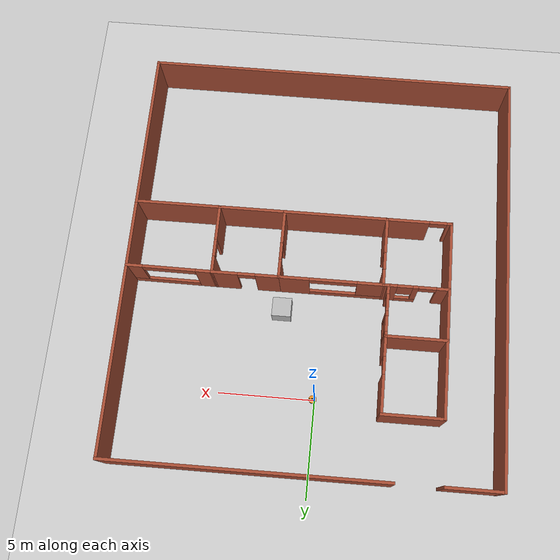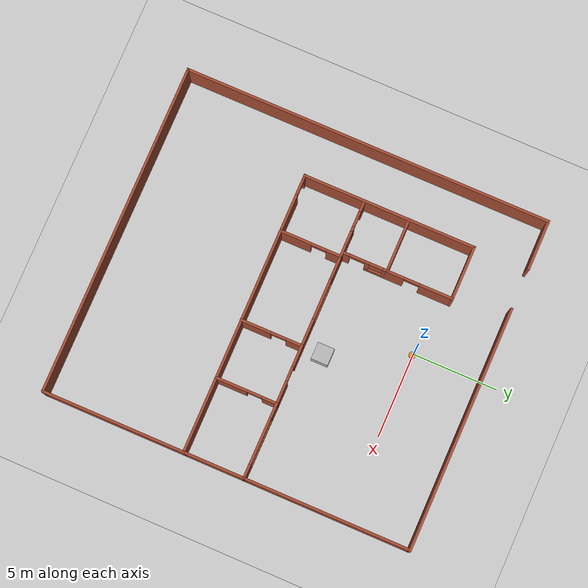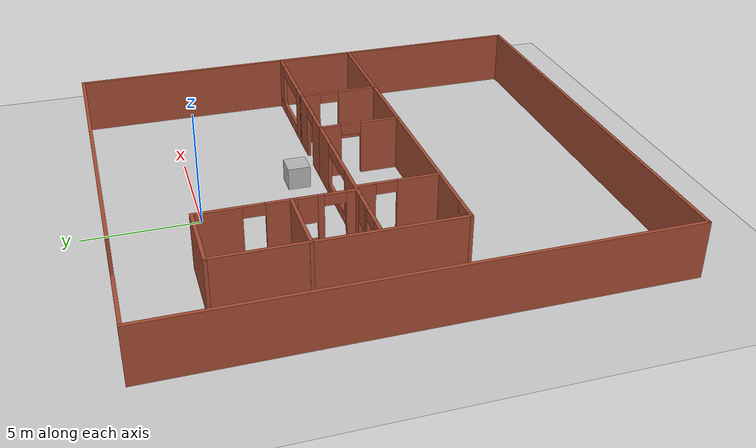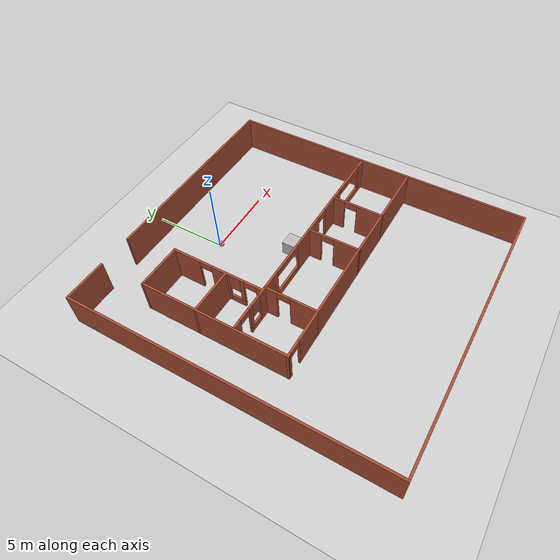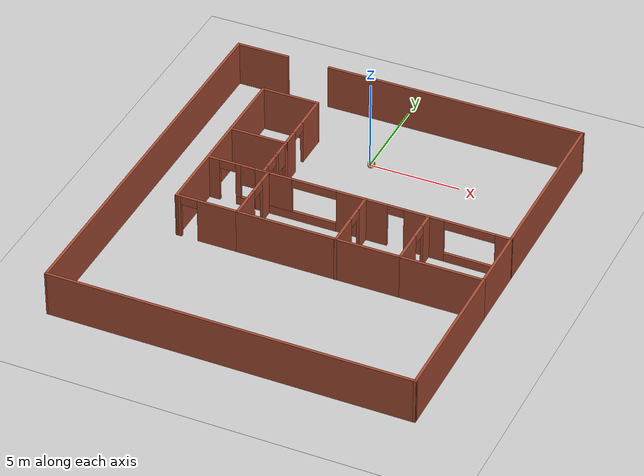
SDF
<sdf version="1.7">
 <world name="default">
  <light name="sun" type="directional">
   <pose>0 0 10 0 -0 0</pose>
   <diffuse>0.8 0.8 0.8 1</diffuse>
   <specular>0.2 0.2 0.2 1</specular>
   <attenuation>
    <range>1000</range>
    <constant>0.9</constant>
    <linear>0.01</linear>
    <quadratic>0.001</quadratic>
   </attenuation>
   <direction>-0.5 0.1 -0.9</direction>
   <spot><inner_angle>0</inner_angle><outer_angle>0</outer_angle><falloff>0</falloff></spot>
  </light>
  <model name="ground_plane">
   <static>1</static>
   <link name="link">
    <collision name="collision">
     <geometry><plane><normal>0 0 1</normal><size>100 100</size></plane></geometry>
     <surface><friction><ode><mu>100</mu><mu2>50</mu2></ode></friction></surface>
    </collision>
    <visual name="visual">
     <cast_shadows>0</cast_shadows>
     <geometry><plane><normal>0 0 1</normal><size>100 100</size></plane></geometry>
     <material>
      <script><uri>file://media/materials/scripts/gazebo.material</uri><name>Gazebo/Grey</name></script>
     </material>
    </visual>
   </link>
  </model>
  <gravity>0 0 -9.8</gravity>
  <magnetic_field>6e-06 2.3e-05 -4.2e-05</magnetic_field>
  <atmosphere type="adiabatic"/>
  <physics type="ode">
   <max_step_size>0.001</max_step_size>
   <real_time_factor>1</real_time_factor>
   <real_time_update_rate>1000</real_time_update_rate>
  </physics>
  <scene><ambient>0.4 0.4 0.4 1</ambient><background>0.7 0.7 0.7 1</background><shadows>1</shadows></scene>
  <spherical_coordinates>
   <surface_model>EARTH_WGS84</surface_model>
   <latitude_deg>0</latitude_deg>
   <longitude_deg>0</longitude_deg>
   <elevation>0</elevation>
   <heading_deg>0</heading_deg>
  </spherical_coordinates>
  <model name="home">
   <pose>0.38026 -6.8838 0 0 -0 0</pose>
   <link name="Wall_102">
    <collision name="Wall_102_Collision">
     <geometry><box><size>4.5503 0.15 2.5</size></box></geometry>
     <pose>0 0 1.25 0 -0 0</pose>
    </collision>
    <visual name="Wall_102_Visual">
     <pose>0 0 1.25 0 -0 0</pose>
     <geometry><box><size>4.5503 0.15 2.5</size></box></geometry>
     <material>
      <script><uri>file://media/materials/scripts/gazebo.material</uri><name>Gazebo/Bricks</name></script>
      <ambient>1 1 1 1</ambient>
     </material>
     <meta><layer>0</layer></meta>
    </visual>
    <pose>7.542 -2.47535 0 0 -0 3.14159</pose>
   </link>
   <link name="Wall_105">
    <pose>0.073453 10.8099 0 0 -0 0</pose>
    <visual name="Wall_105_Visual_0">
     <pose>-8.32911 0 1.25 0 -0 0</pose>
     <geometry><box><size>2.84179 0.15 2.5</size></box></geometry>
     <material>
      <script><uri>file://media/materials/scripts/gazebo.material</uri><name>Gazebo/Bricks</name></script>
      <ambient>1 1 1 1</ambient>
     </material>
     <meta><layer>0</layer></meta>
    </visual>
    <collision name="Wall_105_Collision_0">
     <geometry><box><size>2.84179 0.15 2.5</size></box></geometry>
     <pose>-8.32911 0 1.25 0 -0 0</pose>
    </collision>
    <visual name="Wall_105_Visual_1">
     <pose>2.57089 0 1.25 0 -0 0</pose>
     <geometry><box><size>14.3582 0.15 2.5</size></box></geometry>
     <material>
      <script><uri>file://media/materials/scripts/gazebo.material</uri><name>Gazebo/Bricks</name></script>
      <ambient>1 1 1 1</ambient>
     </material>
     <meta><layer>0</layer></meta>
    </visual>
    <collision name="Wall_105_Collision_1">
     <geometry><box><size>14.3582 0.15 2.5</size></box></geometry>
     <pose>2.57089 0 1.25 0 -0 0</pose>
    </collision>
   </link>
   <link name="Wall_110">
    <pose>7.542 1.08566 0 0 -0 -0.007031</pose>
    <visual name="Wall_110_Visual_0">
     <pose>-1.81389 0 1.25 0 -0 0</pose>
     <geometry><box><size>0.922511 0.15 2.5</size></box></geometry>
     <material>
      <script><uri>file://media/materials/scripts/gazebo.material</uri><name>Gazebo/Bricks</name></script>
      <ambient>1 1 1 1</ambient>
     </material>
     <meta><layer>0</layer></meta>
    </visual>
    <collision name="Wall_110_Collision_0">
     <geometry><box><size>0.922511 0.15 2.5</size></box></geometry>
     <pose>-1.81389 0 1.25 0 -0 0</pose>
    </collision>
    <visual name="Wall_110_Visual_1">
     <pose>0.461255 0 0.25 0 -0 0</pose>
     <geometry><box><size>3.62778 0.15 0.5</size></box></geometry>
     <material>
      <script><uri>file://media/materials/scripts/gazebo.material</uri><name>Gazebo/Bricks</name></script>
      <ambient>1 1 1 1</ambient>
     </material>
     <meta><layer>0</layer></meta>
    </visual>
    <collision name="Wall_110_Collision_1">
     <geometry><box><size>3.62778 0.15 0.5</size></box></geometry>
     <pose>0.461255 0 0.25 0 -0 0</pose>
    </collision>
    <visual name="Wall_110_Visual_2">
     <pose>1.82726 0 1.5 0 -0 0</pose>
     <geometry><box><size>0.895784 0.15 2</size></box></geometry>
     <material>
      <script><uri>file://media/materials/scripts/gazebo.material</uri><name>Gazebo/Bricks</name></script>
      <ambient>1 1 1 1</ambient>
     </material>
     <meta><layer>0</layer></meta>
    </visual>
    <collision name="Wall_110_Collision_2">
     <geometry><box><size>0.895784 0.15 2</size></box></geometry>
     <pose>1.82726 0 1.5 0 -0 0</pose>
    </collision>
    <visual name="Wall_110_Visual_3">
     <pose>0.013363 0 2.25 0 -0 0</pose>
     <geometry><box><size>2.732 0.15 0.5</size></box></geometry>
     <material>
      <script><uri>file://media/materials/scripts/gazebo.material</uri><name>Gazebo/Bricks</name></script>
      <ambient>1 1 1 1</ambient>
     </material>
     <meta><layer>0</layer></meta>
    </visual>
    <collision name="Wall_110_Collision_3">
     <geometry><box><size>2.732 0.15 0.5</size></box></geometry>
     <pose>0.013363 0 2.25 0 -0 0</pose>
    </collision>
   </link>
   <link name="Wall_111">
    <collision name="Wall_111_Collision">
     <geometry><box><size>3.68548 0.15 2.5</size></box></geometry>
     <pose>0 0 1.25 0 -0 0</pose>
    </collision>
    <visual name="Wall_111_Visual">
     <pose>0 0 1.25 0 -0 0</pose>
     <geometry><box><size>3.68548 0.15 2.5</size></box></geometry>
     <material>
      <script><uri>file://media/materials/scripts/gazebo.material</uri><name>Gazebo/Bricks</name></script>
      <ambient>1 1 1 1</ambient>
     </material>
     <meta><layer>0</layer></meta>
    </visual>
    <pose>9.74215 -0.69755 0 0 -0 -1.5708</pose>
   </link>
   <link name="Wall_114">
    <collision name="Wall_114_Collision">
     <geometry><box><size>9.75 0.15 2.5</size></box></geometry>
     <pose>0 0 1.25 0 -0 0</pose>
    </collision>
    <visual name="Wall_114_Visual">
     <pose>0 0 1.25 0 -0 0</pose>
     <geometry><box><size>9.75 0.15 2.5</size></box></geometry>
     <material>
      <script><uri>file://media/materials/scripts/gazebo.material</uri><name>Gazebo/Bricks</name></script>
      <ambient>1 1 1 1</ambient>
     </material>
     <meta><layer>0</layer></meta>
    </visual>
    <pose>9.74215 5.90113 0 0 -0 1.5708</pose>
   </link>
   <link name="Wall_116">
    <collision name="Wall_116_Collision">
     <geometry><box><size>8.5 0.15 2.5</size></box></geometry>
     <pose>0 0 1.25 0 -0 0</pose>
    </collision>
    <visual name="Wall_116_Visual">
     <pose>0 0 1.25 0 -0 0</pose>
     <geometry><box><size>8.5 0.15 2.5</size></box></geometry>
     <material>
      <script><uri>file://media/materials/scripts/gazebo.material</uri><name>Gazebo/Bricks</name></script>
      <ambient>1 1 1 1</ambient>
     </material>
     <meta><layer>0</layer></meta>
    </visual>
    <pose>9.74215 -6.64029 0 0 -0 -1.5708</pose>
   </link>
   <link name="Wall_117">
    <collision name="Wall_117_Collision">
     <geometry><box><size>19.61 0.15 2.5</size></box></geometry>
     <pose>0 0 1.25 0 -0 0</pose>
    </collision>
    <visual name="Wall_117_Visual">
     <pose>0 0 1.25 0 -0 0</pose>
     <geometry><box><size>19.61 0.15 2.5</size></box></geometry>
     <material>
      <script><uri>file://media/materials/scripts/gazebo.material</uri><name>Gazebo/Bricks</name></script>
      <ambient>1 1 1 1</ambient>
     </material>
     <meta><layer>0</layer></meta>
    </visual>
    <pose>0.012142 -10.7999 0 0 -0 3.14002</pose>
   </link>
   <link name="Wall_118">
    <collision name="Wall_118_Collision">
     <geometry><box><size>21.75 0.15 2.5</size></box></geometry>
     <pose>0 0 1.25 0 -0 0</pose>
    </collision>
    <visual name="Wall_118_Visual">
     <pose>0 0 1.25 0 -0 0</pose>
     <geometry><box><size>21.75 0.15 2.5</size></box></geometry>
     <material>
      <script><uri>file://media/materials/scripts/gazebo.material</uri><name>Gazebo/Bricks</name></script>
      <ambient>1 1 1 1</ambient>
     </material>
     <meta><layer>0</layer></meta>
    </visual>
    <pose>-9.74845 0.015407 0 0 -0 1.5708</pose>
   </link>
   <link name="Wall_128">
    <collision name="Wall_128_Collision">
     <geometry><box><size>3.25 0.15 2.5</size></box></geometry>
     <pose>0 0 1.25 0 -0 0</pose>
    </collision>
    <visual name="Wall_128_Visual">
     <pose>0 0 1.25 0 -0 0</pose>
     <geometry><box><size>3.25 0.15 2.5</size></box></geometry>
     <material>
      <script><uri>file://media/materials/scripts/gazebo.material</uri><name>Gazebo/Bricks</name></script>
      <ambient>1 1 1 1</ambient>
     </material>
     <meta><layer>0</layer></meta>
    </visual>
    <pose>-5.25956 7.62772 0 0 -0 3.14159</pose>
   </link>
   <link name="Wall_134">
    <pose>-3.71403 5.67265 0 0 -0 1.5708</pose>
    <visual name="Wall_134_Visual_0">
     <pose>-1.44601 0 1.25 0 -0 0</pose>
     <geometry><box><size>1.10798 0.15 2.5</size></box></geometry>
     <material>
      <script><uri>file://media/materials/scripts/gazebo.material</uri><name>Gazebo/Bricks</name></script>
      <ambient>1 1 1 1</ambient>
     </material>
     <meta><layer>0</layer></meta>
    </visual>
    <collision name="Wall_134_Collision_0">
     <geometry><box><size>1.10798 0.15 2.5</size></box></geometry>
     <pose>-1.44601 0 1.25 0 -0 0</pose>
    </collision>
    <visual name="Wall_134_Visual_1">
     <pose>1.00399 0 1.25 0 -0 0</pose>
     <geometry><box><size>1.99202 0.15 2.5</size></box></geometry>
     <material>
      <script><uri>file://media/materials/scripts/gazebo.material</uri><name>Gazebo/Bricks</name></script>
      <ambient>1 1 1 1</ambient>
     </material>
     <meta><layer>0</layer></meta>
    </visual>
    <collision name="Wall_134_Collision_1">
     <geometry><box><size>1.99202 0.15 2.5</size></box></geometry>
     <pose>1.00399 0 1.25 0 -0 0</pose>
    </collision>
    <visual name="Wall_134_Visual_2">
     <pose>-0.442023 0 2.25 0 -0 0</pose>
     <geometry><box><size>0.9 0.15 0.5</size></box></geometry>
     <material>
      <script><uri>file://media/materials/scripts/gazebo.material</uri><name>Gazebo/Bricks</name></script>
      <ambient>1 1 1 1</ambient>
     </material>
     <meta><layer>0</layer></meta>
    </visual>
    <collision name="Wall_134_Collision_2">
     <geometry><box><size>0.9 0.15 0.5</size></box></geometry>
     <pose>-0.442023 0 2.25 0 -0 0</pose>
    </collision>
   </link>
   <link name="Wall_138">
    <pose>-3.45599 -0.690284 0 0 -0 -1.57324</pose>
    <visual name="Wall_138_Visual_0">
     <pose>-1.40379 0 1.25 0 -0 0</pose>
     <geometry><box><size>0.916195 0.15 2.5</size></box></geometry>
     <material>
      <script><uri>file://media/materials/scripts/gazebo.material</uri><name>Gazebo/Bricks</name></script>
      <ambient>1 1 1 1</ambient>
     </material>
     <meta><layer>0</layer></meta>
    </visual>
    <collision name="Wall_138_Collision_0">
     <geometry><box><size>0.916195 0.15 2.5</size></box></geometry>
     <pose>-1.40379 0 1.25 0 -0 0</pose>
    </collision>
    <visual name="Wall_138_Visual_1">
     <pose>0.908098 0 1.25 0 -0 0</pose>
     <geometry><box><size>1.90758 0.15 2.5</size></box></geometry>
     <material>
      <script><uri>file://media/materials/scripts/gazebo.material</uri><name>Gazebo/Bricks</name></script>
      <ambient>1 1 1 1</ambient>
     </material>
     <meta><layer>0</layer></meta>
    </visual>
    <collision name="Wall_138_Collision_1">
     <geometry><box><size>1.90758 0.15 2.5</size></box></geometry>
     <pose>0.908098 0 1.25 0 -0 0</pose>
    </collision>
    <visual name="Wall_138_Visual_2">
     <pose>-0.495693 0 2.25 0 -0 0</pose>
     <geometry><box><size>0.9 0.15 0.5</size></box></geometry>
     <material>
      <script><uri>file://media/materials/scripts/gazebo.material</uri><name>Gazebo/Bricks</name></script>
      <ambient>1 1 1 1</ambient>
     </material>
     <meta><layer>0</layer></meta>
    </visual>
    <collision name="Wall_138_Collision_2">
     <geometry><box><size>0.9 0.15 0.5</size></box></geometry>
     <pose>-0.495693 0 2.25 0 -0 0</pose>
    </collision>
   </link>
   <link name="Wall_139">
    <pose>-5.1441 -2.47717 0 0 -0 3.14159</pose>
    <visual name="Wall_139_Visual_0">
     <pose>-0.614696 0 1.25 0 -0 0</pose>
     <geometry><box><size>2.27061 0.15 2.5</size></box></geometry>
     <material>
      <script><uri>file://media/materials/scripts/gazebo.material</uri><name>Gazebo/Bricks</name></script>
      <ambient>1 1 1 1</ambient>
     </material>
     <meta><layer>0</layer></meta>
    </visual>
    <collision name="Wall_139_Collision_0">
     <geometry><box><size>2.27061 0.15 2.5</size></box></geometry>
     <pose>-0.614696 0 1.25 0 -0 0</pose>
    </collision>
    <visual name="Wall_139_Visual_1">
     <pose>1.5853 0 1.25 0 -0 0</pose>
     <geometry><box><size>0.329391 0.15 2.5</size></box></geometry>
     <material>
      <script><uri>file://media/materials/scripts/gazebo.material</uri><name>Gazebo/Bricks</name></script>
      <ambient>1 1 1 1</ambient>
     </material>
     <meta><layer>0</layer></meta>
    </visual>
    <collision name="Wall_139_Collision_1">
     <geometry><box><size>0.329391 0.15 2.5</size></box></geometry>
     <pose>1.5853 0 1.25 0 -0 0</pose>
    </collision>
    <visual name="Wall_139_Visual_2">
     <pose>0.970609 0 2.25 0 -0 0</pose>
     <geometry><box><size>0.9 0.15 0.5</size></box></geometry>
     <material>
      <script><uri>file://media/materials/scripts/gazebo.material</uri><name>Gazebo/Bricks</name></script>
      <ambient>1 1 1 1</ambient>
     </material>
     <meta><layer>0</layer></meta>
    </visual>
    <collision name="Wall_139_Collision_2">
     <geometry><box><size>0.9 0.15 0.5</size></box></geometry>
     <pose>0.970609 0 2.25 0 -0 0</pose>
    </collision>
   </link>
   <link name="Wall_140">
    <collision name="Wall_140_Collision">
     <geometry><box><size>10.2238 0.15 2.5</size></box></geometry>
     <pose>0 0 1.25 0 -0 0</pose>
    </collision>
    <visual name="Wall_140_Visual">
     <pose>0 0 1.25 0 -0 0</pose>
     <geometry><box><size>10.2238 0.15 2.5</size></box></geometry>
     <material>
      <script><uri>file://media/materials/scripts/gazebo.material</uri><name>Gazebo/Bricks</name></script>
      <ambient>1 1 1 1</ambient>
     </material>
     <meta><layer>0</layer></meta>
    </visual>
    <pose>-6.80599 2.55972 0 0 -0 1.56993</pose>
   </link>
   <link name="Wall_142">
    <collision name="Wall_142_Collision">
     <geometry><box><size>3.25 0.15 2.5</size></box></geometry>
     <pose>0 0 1.25 0 -0 0</pose>
    </collision>
    <visual name="Wall_142_Visual">
     <pose>0 0 1.25 0 -0 0</pose>
     <geometry><box><size>3.25 0.15 2.5</size></box></geometry>
     <material>
      <script><uri>file://media/materials/scripts/gazebo.material</uri><name>Gazebo/Bricks</name></script>
      <ambient>1 1 1 1</ambient>
     </material>
     <meta><layer>0</layer></meta>
    </visual>
    <pose>-5.26403 3.74764 0 0 -0 3.14159</pose>
   </link>
   <link name="Wall_144">
    <pose>-5.12661 1.0966 0 0 -0 3.14159</pose>
    <visual name="Wall_144_Visual_0">
     <pose>-1.35862 0 1.25 0 -0 0</pose>
     <geometry><box><size>0.782765 0.15 2.5</size></box></geometry>
     <material>
      <script><uri>file://media/materials/scripts/gazebo.material</uri><name>Gazebo/Bricks</name></script>
      <ambient>1 1 1 1</ambient>
     </material>
     <meta><layer>0</layer></meta>
    </visual>
    <collision name="Wall_144_Collision_0">
     <geometry><box><size>0.782765 0.15 2.5</size></box></geometry>
     <pose>-1.35862 0 1.25 0 -0 0</pose>
    </collision>
    <visual name="Wall_144_Visual_1">
     <pose>1.3863 0 1.25 0 -0 0</pose>
     <geometry><box><size>0.7274 0.15 2.5</size></box></geometry>
     <material>
      <script><uri>file://media/materials/scripts/gazebo.material</uri><name>Gazebo/Bricks</name></script>
      <ambient>1 1 1 1</ambient>
     </material>
     <meta><layer>0</layer></meta>
    </visual>
    <collision name="Wall_144_Collision_1">
     <geometry><box><size>0.7274 0.15 2.5</size></box></geometry>
     <pose>1.3863 0 1.25 0 -0 0</pose>
    </collision>
    <visual name="Wall_144_Visual_2">
     <pose>-0.422317 0 0.25 0 -0 0</pose>
     <geometry><box><size>1.08984 0.15 0.5</size></box></geometry>
     <material>
      <script><uri>file://media/materials/scripts/gazebo.material</uri><name>Gazebo/Bricks</name></script>
      <ambient>1 1 1 1</ambient>
     </material>
     <meta><layer>0</layer></meta>
    </visual>
    <collision name="Wall_144_Collision_2">
     <geometry><box><size>1.08984 0.15 0.5</size></box></geometry>
     <pose>-0.422317 0 0.25 0 -0 0</pose>
    </collision>
    <visual name="Wall_144_Visual_3">
     <pose>-0.022317 0 1.5 0 -0 0</pose>
     <geometry><box><size>0.289835 0.15 2</size></box></geometry>
     <material>
      <script><uri>file://media/materials/scripts/gazebo.material</uri><name>Gazebo/Bricks</name></script>
      <ambient>1 1 1 1</ambient>
     </material>
     <meta><layer>0</layer></meta>
    </visual>
    <collision name="Wall_144_Collision_3">
     <geometry><box><size>0.289835 0.15 2</size></box></geometry>
     <pose>-0.022317 0 1.5 0 -0 0</pose>
    </collision>
    <visual name="Wall_144_Visual_4">
     <pose>-0.567235 0 1.9 0 -0 0</pose>
     <geometry><box><size>0.8 0.15 1.2</size></box></geometry>
     <material>
      <script><uri>file://media/materials/scripts/gazebo.material</uri><name>Gazebo/Bricks</name></script>
      <ambient>1 1 1 1</ambient>
     </material>
     <meta><layer>0</layer></meta>
    </visual>
    <collision name="Wall_144_Collision_4">
     <geometry><box><size>0.8 0.15 1.2</size></box></geometry>
     <pose>-0.567235 0 1.9 0 -0 0</pose>
    </collision>
    <visual name="Wall_144_Visual_5">
     <pose>0.5726 0 2.25 0 -0 0</pose>
     <geometry><box><size>0.9 0.15 0.5</size></box></geometry>
     <material>
      <script><uri>file://media/materials/scripts/gazebo.material</uri><name>Gazebo/Bricks</name></script>
      <ambient>1 1 1 1</ambient>
     </material>
     <meta><layer>0</layer></meta>
    </visual>
    <collision name="Wall_144_Collision_5">
     <geometry><box><size>0.9 0.15 0.5</size></box></geometry>
     <pose>0.5726 0 2.25 0 -0 0</pose>
    </collision>
   </link>
   <link name="Wall_146">
    <pose>-3.71403 2.44765 0 0 -0 -1.5708</pose>
    <visual name="Wall_146_Visual_0">
     <pose>-1.21483 0 1.25 0 -0 0</pose>
     <geometry><box><size>0.320338 0.15 2.5</size></box></geometry>
     <material>
      <script><uri>file://media/materials/scripts/gazebo.material</uri><name>Gazebo/Bricks</name></script>
      <ambient>1 1 1 1</ambient>
     </material>
     <meta><layer>0</layer></meta>
    </visual>
    <collision name="Wall_146_Collision_0">
     <geometry><box><size>0.320338 0.15 2.5</size></box></geometry>
     <pose>-1.21483 0 1.25 0 -0 0</pose>
    </collision>
    <visual name="Wall_146_Visual_1">
     <pose>1.13923 0 1.25 0 -0 0</pose>
     <geometry><box><size>0.471531 0.15 2.5</size></box></geometry>
     <material>
      <script><uri>file://media/materials/scripts/gazebo.material</uri><name>Gazebo/Bricks</name></script>
      <ambient>1 1 1 1</ambient>
     </material>
     <meta><layer>0</layer></meta>
    </visual>
    <collision name="Wall_146_Collision_1">
     <geometry><box><size>0.471531 0.15 2.5</size></box></geometry>
     <pose>1.13923 0 1.25 0 -0 0</pose>
    </collision>
    <visual name="Wall_146_Visual_2">
     <pose>-0.525596 0 0.25 0 -0 0</pose>
     <geometry><box><size>1.05813 0.15 0.5</size></box></geometry>
     <material>
      <script><uri>file://media/materials/scripts/gazebo.material</uri><name>Gazebo/Bricks</name></script>
      <ambient>1 1 1 1</ambient>
     </material>
     <meta><layer>0</layer></meta>
    </visual>
    <collision name="Wall_146_Collision_2">
     <geometry><box><size>1.05813 0.15 0.5</size></box></geometry>
     <pose>-0.525596 0 0.25 0 -0 0</pose>
    </collision>
    <visual name="Wall_146_Visual_3">
     <pose>-0.125596 0 1.5 0 -0 0</pose>
     <geometry><box><size>0.258131 0.15 2</size></box></geometry>
     <material>
      <script><uri>file://media/materials/scripts/gazebo.material</uri><name>Gazebo/Bricks</name></script>
      <ambient>1 1 1 1</ambient>
     </material>
     <meta><layer>0</layer></meta>
    </visual>
    <collision name="Wall_146_Collision_3">
     <geometry><box><size>0.258131 0.15 2</size></box></geometry>
     <pose>-0.125596 0 1.5 0 -0 0</pose>
    </collision>
    <visual name="Wall_146_Visual_4">
     <pose>-0.654662 0 1.9 0 -0 0</pose>
     <geometry><box><size>0.8 0.15 1.2</size></box></geometry>
     <material>
      <script><uri>file://media/materials/scripts/gazebo.material</uri><name>Gazebo/Bricks</name></script>
      <ambient>1 1 1 1</ambient>
     </material>
     <meta><layer>0</layer></meta>
    </visual>
    <collision name="Wall_146_Collision_4">
     <geometry><box><size>0.8 0.15 1.2</size></box></geometry>
     <pose>-0.654662 0 1.9 0 -0 0</pose>
    </collision>
    <visual name="Wall_146_Visual_5">
     <pose>0.453469 0 2.25 0 -0 0</pose>
     <geometry><box><size>0.9 0.15 0.5</size></box></geometry>
     <material>
      <script><uri>file://media/materials/scripts/gazebo.material</uri><name>Gazebo/Bricks</name></script>
      <ambient>1 1 1 1</ambient>
     </material>
     <meta><layer>0</layer></meta>
    </visual>
    <collision name="Wall_146_Collision_5">
     <geometry><box><size>0.9 0.15 0.5</size></box></geometry>
     <pose>0.453469 0 2.25 0 -0 0</pose>
    </collision>
   </link>
   <link name="Wall_80">
    <collision name="Wall_80_Collision">
     <geometry><box><size>3.58583 0.15 2.5</size></box></geometry>
     <pose>0 0 1.25 0 -0 0</pose>
    </collision>
    <visual name="Wall_80_Visual">
     <pose>0 0 1.25 0 -0 0</pose>
     <geometry><box><size>3.58583 0.15 2.5</size></box></geometry>
     <material>
      <script><uri>file://media/materials/scripts/gazebo.material</uri><name>Gazebo/Bricks</name></script>
      <ambient>1 1 1 1</ambient>
     </material>
     <meta><layer>0</layer></meta>
    </visual>
    <pose>3.62395 -2.47761 0 0 -0 0.001318</pose>
   </link>
   <link name="Wall_81">
    <pose>5.34186 -0.687109 0 0 -0 1.5708</pose>
    <visual name="Wall_81_Visual_0">
     <pose>-0.921951 0 1.25 0 -0 0</pose>
     <geometry><box><size>1.88257 0.15 2.5</size></box></geometry>
     <material>
      <script><uri>file://media/materials/scripts/gazebo.material</uri><name>Gazebo/Bricks</name></script>
      <ambient>1 1 1 1</ambient>
     </material>
     <meta><layer>0</layer></meta>
    </visual>
    <collision name="Wall_81_Collision_0">
     <geometry><box><size>1.88257 0.15 2.5</size></box></geometry>
     <pose>-0.921951 0 1.25 0 -0 0</pose>
    </collision>
    <visual name="Wall_81_Visual_1">
     <pose>1.39129 0 1.25 0 -0 0</pose>
     <geometry><box><size>0.943903 0.15 2.5</size></box></geometry>
     <material>
      <script><uri>file://media/materials/scripts/gazebo.material</uri><name>Gazebo/Bricks</name></script>
      <ambient>1 1 1 1</ambient>
     </material>
     <meta><layer>0</layer></meta>
    </visual>
    <collision name="Wall_81_Collision_1">
     <geometry><box><size>0.943903 0.15 2.5</size></box></geometry>
     <pose>1.39129 0 1.25 0 -0 0</pose>
    </collision>
    <visual name="Wall_81_Visual_2">
     <pose>0.469334 0 2.25 0 -0 0</pose>
     <geometry><box><size>0.9 0.15 0.5</size></box></geometry>
     <material>
      <script><uri>file://media/materials/scripts/gazebo.material</uri><name>Gazebo/Bricks</name></script>
      <ambient>1 1 1 1</ambient>
     </material>
     <meta><layer>0</layer></meta>
    </visual>
    <collision name="Wall_81_Collision_2">
     <geometry><box><size>0.9 0.15 0.5</size></box></geometry>
     <pose>0.469334 0 2.25 0 -0 0</pose>
    </collision>
   </link>
   <link name="Wall_82">
    <pose>3.62012 1.09886 0 0 -0 -3.14028</pose>
    <visual name="Wall_82_Visual_0">
     <pose>-1.09624 0 1.25 0 -0 0</pose>
     <geometry><box><size>1.40099 0.15 2.5</size></box></geometry>
     <material>
      <script><uri>file://media/materials/scripts/gazebo.material</uri><name>Gazebo/Bricks</name></script>
      <ambient>1 1 1 1</ambient>
     </material>
     <meta><layer>0</layer></meta>
    </visual>
    <collision name="Wall_82_Collision_0">
     <geometry><box><size>1.40099 0.15 2.5</size></box></geometry>
     <pose>-1.09624 0 1.25 0 -0 0</pose>
    </collision>
    <visual name="Wall_82_Visual_1">
     <pose>1.1505 0 1.25 0 -0 0</pose>
     <geometry><box><size>1.29248 0.15 2.5</size></box></geometry>
     <material>
      <script><uri>file://media/materials/scripts/gazebo.material</uri><name>Gazebo/Bricks</name></script>
      <ambient>1 1 1 1</ambient>
     </material>
     <meta><layer>0</layer></meta>
    </visual>
    <collision name="Wall_82_Collision_1">
     <geometry><box><size>1.29248 0.15 2.5</size></box></geometry>
     <pose>1.1505 0 1.25 0 -0 0</pose>
    </collision>
    <visual name="Wall_82_Visual_2">
     <pose>0.054257 0 2.25 0 -0 0</pose>
     <geometry><box><size>0.9 0.15 0.5</size></box></geometry>
     <material>
      <script><uri>file://media/materials/scripts/gazebo.material</uri><name>Gazebo/Bricks</name></script>
      <ambient>1 1 1 1</ambient>
     </material>
     <meta><layer>0</layer></meta>
    </visual>
    <collision name="Wall_82_Collision_2">
     <geometry><box><size>0.9 0.15 0.5</size></box></geometry>
     <pose>0.054257 0 2.25 0 -0 0</pose>
    </collision>
   </link>
   <link name="Wall_83">
    <pose>1.91095 -0.700383 0 0 -0 -1.56866</pose>
    <visual name="Wall_83_Visual_0">
     <pose>-1.36298 0 1.25 0 -0 0</pose>
     <geometry><box><size>1.00052 0.15 2.5</size></box></geometry>
     <material>
      <script><uri>file://media/materials/scripts/gazebo.material</uri><name>Gazebo/Bricks</name></script>
      <ambient>1 1 1 1</ambient>
     </material>
     <meta><layer>0</layer></meta>
    </visual>
    <collision name="Wall_83_Collision_0">
     <geometry><box><size>1.00052 0.15 2.5</size></box></geometry>
     <pose>-1.36298 0 1.25 0 -0 0</pose>
    </collision>
    <visual name="Wall_83_Visual_1">
     <pose>0.950258 0 1.25 0 -0 0</pose>
     <geometry><box><size>1.82597 0.15 2.5</size></box></geometry>
     <material>
      <script><uri>file://media/materials/scripts/gazebo.material</uri><name>Gazebo/Bricks</name></script>
      <ambient>1 1 1 1</ambient>
     </material>
     <meta><layer>0</layer></meta>
    </visual>
    <collision name="Wall_83_Collision_1">
     <geometry><box><size>1.82597 0.15 2.5</size></box></geometry>
     <pose>0.950258 0 1.25 0 -0 0</pose>
    </collision>
    <visual name="Wall_83_Visual_2">
     <pose>-0.412724 0 2.25 0 -0 0</pose>
     <geometry><box><size>0.9 0.15 0.5</size></box></geometry>
     <material>
      <script><uri>file://media/materials/scripts/gazebo.material</uri><name>Gazebo/Bricks</name></script>
      <ambient>1 1 1 1</ambient>
     </material>
     <meta><layer>0</layer></meta>
    </visual>
    <collision name="Wall_83_Collision_2">
     <geometry><box><size>0.9 0.15 0.5</size></box></geometry>
     <pose>-0.412724 0 2.25 0 -0 0</pose>
    </collision>
   </link>
   <link name="Wall_84">
    <collision name="Wall_84_Collision">
     <geometry><box><size>5.5 0.15 2.5</size></box></geometry>
     <pose>0 0 1.25 0 -0 0</pose>
    </collision>
    <visual name="Wall_84_Visual">
     <pose>0 0 1.25 0 -0 0</pose>
     <geometry><box><size>5.5 0.15 2.5</size></box></geometry>
     <material>
      <script><uri>file://media/materials/scripts/gazebo.material</uri><name>Gazebo/Bricks</name></script>
      <ambient>1 1 1 1</ambient>
     </material>
     <meta><layer>0</layer></meta>
    </visual>
    <pose>-0.768966 -2.47987 0 0 -0 3.14159</pose>
   </link>
   <link name="Wall_96">
    <pose>-0.776613 1.0966 0 0 -0 3.14159</pose>
    <visual name="Wall_96_Visual_0">
     <pose>-1.92854 0 1.25 0 -0 0</pose>
     <geometry><box><size>1.64292 0.15 2.5</size></box></geometry>
     <material>
      <script><uri>file://media/materials/scripts/gazebo.material</uri><name>Gazebo/Bricks</name></script>
      <ambient>1 1 1 1</ambient>
     </material>
     <meta><layer>0</layer></meta>
    </visual>
    <collision name="Wall_96_Collision_0">
     <geometry><box><size>1.64292 0.15 2.5</size></box></geometry>
     <pose>-1.92854 0 1.25 0 -0 0</pose>
    </collision>
    <visual name="Wall_96_Visual_1">
     <pose>0.821461 0 0.25 0 -0 0</pose>
     <geometry><box><size>3.85708 0.15 0.5</size></box></geometry>
     <material>
      <script><uri>file://media/materials/scripts/gazebo.material</uri><name>Gazebo/Bricks</name></script>
      <ambient>1 1 1 1</ambient>
     </material>
     <meta><layer>0</layer></meta>
    </visual>
    <collision name="Wall_96_Collision_1">
     <geometry><box><size>3.85708 0.15 0.5</size></box></geometry>
     <pose>0.821461 0 0.25 0 -0 0</pose>
    </collision>
    <visual name="Wall_96_Visual_2">
     <pose>2.03896 0 1.5 0 -0 0</pose>
     <geometry><box><size>1.42208 0.15 2</size></box></geometry>
     <material>
      <script><uri>file://media/materials/scripts/gazebo.material</uri><name>Gazebo/Bricks</name></script>
      <ambient>1 1 1 1</ambient>
     </material>
     <meta><layer>0</layer></meta>
    </visual>
    <collision name="Wall_96_Collision_2">
     <geometry><box><size>1.42208 0.15 2</size></box></geometry>
     <pose>2.03896 0 1.5 0 -0 0</pose>
    </collision>
    <visual name="Wall_96_Visual_3">
     <pose>0.110421 0 2.25 0 -0 0</pose>
     <geometry><box><size>2.435 0.15 0.5</size></box></geometry>
     <material>
      <script><uri>file://media/materials/scripts/gazebo.material</uri><name>Gazebo/Bricks</name></script>
      <ambient>1 1 1 1</ambient>
     </material>
     <meta><layer>0</layer></meta>
    </visual>
    <collision name="Wall_96_Collision_3">
     <geometry><box><size>2.435 0.15 0.5</size></box></geometry>
     <pose>0.110421 0 2.25 0 -0 0</pose>
    </collision>
   </link>
   <static>1</static>
  </model>
  <model name="test_box_clone">
   <pose>2.07976 -4.61365 0.5 0 -0 0</pose>
   <link name="link">
    <collision name="collision"><geometry><box><size>1 1 1</size></box></geometry></collision>
    <visual name="visual"><geometry><box><size>1 1 1</size></box></geometry></visual>
    <inertial>
     <inertia><ixx>1</ixx><ixy>0</ixy><ixz>0</ixz><iyy>1</iyy><iyz>0</iyz><izz>1</izz></inertia>
     <mass>1</mass>
    </inertial>
   </link>
  </model>
  <model name="ayuan">
   <link name="base_footprint">
    <inertial>
     <pose>0.037143 0 0.154048 0 -0 0</pose>
     <mass>10.5</mass>
     <inertia>
      <ixx>0.0923913</ixx>
      <ixy>0</ixy>
      <ixz>-0.0193714</ixz>
      <iyy>0.140356</iyy>
      <iyz>0</iyz>
      <izz>0.171331</izz>
     </inertia>
    </inertial>
    <collision name="base_footprint_fixed_joint_lump__base_link_collision">
     <pose>0 0 0.11 0 -0 0</pose>
     <geometry><cylinder><length>0.16</length><radius>0.2</radius></cylinder></geometry>
    </collision>
    <collision name="base_footprint_fixed_joint_lump__camera_support_link_collision_1">
     <pose>0.17 0 0.195 0 -0 0</pose>
     <geometry><box><size>0.02 0.05 0.01</size></box></geometry>
    </collision>
    <collision name="base_footprint_fixed_joint_lump__camera_link_collision_2">
     <pose>0.17 0 0.215 0 -0 0</pose>
     <geometry><box><size>0.02 0.05 0.03</size></box></geometry>
    </collision>
    <collision name="base_footprint_fixed_joint_lump__imu_link_collision_3">
     <pose>0.1 0 0.195 0 -0 0</pose>
     <geometry><box><size>0.02 0.02 0.01</size></box></geometry>
    </collision>
    <collision name="base_footprint_fixed_joint_lump__laser_support_link_collision_4">
     <pose>0 0 0.205 0 -0 0</pose>
     <geometry><cylinder><length>0.03</length><radius>0.05</radius></cylinder></geometry>
    </collision>
    <collision name="base_footprint_fixed_joint_lump__laser_link_collision_5">
     <pose>0 0 0.245 0 -0 0</pose>
     <geometry><cylinder><length>0.05</length><radius>0.05</radius></cylinder></geometry>
    </collision>
    <visual name="base_footprint_visual"><geometry><box><size>0.001 0.001 0.001</size></box></geometry></visual>
    <visual name="base_footprint_fixed_joint_lump__base_link_visual_1">
     <pose>0 0 0.11 0 -0 0</pose>
     <geometry><cylinder><length>0.16</length><radius>0.2</radius></cylinder></geometry>
     <material>
      <script><name>Gazebo/Orange</name><uri>file://media/materials/scripts/gazebo.material</uri></script>
     </material>
    </visual>
    <visual name="base_footprint_fixed_joint_lump__camera_support_link_visual_2">
     <pose>0.17 0 0.195 0 -0 0</pose>
     <geometry><box><size>0.02 0.05 0.01</size></box></geometry>
    </visual>
    <visual name="base_footprint_fixed_joint_lump__camera_link_visual_3">
     <pose>0.17 0 0.215 0 -0 0</pose>
     <geometry><box><size>0.02 0.05 0.03</size></box></geometry>
     <material>
      <script><name>Gazebo/Black</name><uri>file://media/materials/scripts/gazebo.material</uri></script>
     </material>
    </visual>
    <visual name="base_footprint_fixed_joint_lump__imu_link_visual_4">
     <pose>0.1 0 0.195 0 -0 0</pose>
     <geometry><box><size>0.02 0.02 0.01</size></box></geometry>
    </visual>
    <visual name="base_footprint_fixed_joint_lump__laser_support_link_visual_5">
     <pose>0 0 0.205 0 -0 0</pose>
     <geometry><cylinder><length>0.03</length><radius>0.05</radius></cylinder></geometry>
    </visual>
    <visual name="base_footprint_fixed_joint_lump__laser_link_visual_6">
     <pose>0 0 0.245 0 -0 0</pose>
     <geometry><cylinder><length>0.05</length><radius>0.05</radius></cylinder></geometry>
     <material>
      <script><name>Gazebo/Black</name><uri>file://media/materials/scripts/gazebo.material</uri></script>
     </material>
    </visual>
    <sensor name="camera1" type="camera">
     <update_rate>30</update_rate>
     <camera name="head">
      <horizontal_fov>1.39626</horizontal_fov>
      <image><width>800</width><height>800</height><format>R8G8B8</format></image>
      <clip><near>0.02</near><far>300</far></clip>
      <noise><type>gaussian</type><mean>0</mean><stddev>0.007</stddev></noise>
     </camera>
     <plugin name="camera_controller" filename="libgazebo_ros_camera.so">
      <alwaysOn>1</alwaysOn>
      <updateRate>0.0</updateRate>
      <cameraName>rrbot/camera1</cameraName>
      <imageTopicName>image_raw</imageTopicName>
      <cameraInfoTopicName>camera_info</cameraInfoTopicName>
      <frameName>camera_link</frameName>
      <hackBaseline>0.07</hackBaseline>
      <distortionK1>0.0</distortionK1>
      <distortionK2>0.0</distortionK2>
      <distortionK3>0.0</distortionK3>
      <distortionT1>0.0</distortionT1>
      <distortionT2>0.0</distortionT2>
     </plugin>
     <pose>0.17 0 0.215 0 -0 0</pose>
    </sensor>
    <sensor name="imu_sensor" type="imu">
     <plugin name="imu_plugin" filename="libgazebo_ros_imu_sensor.so">
      <ros><namespace>/</namespace><remapping>~/out:=imu</remapping></ros>
      <initial_orientation_as_reference>0</initial_orientation_as_reference>
     </plugin>
     <always_on>1</always_on>
     <update_rate>100</update_rate>
     <visualize>1</visualize>
     <imu>
      <angular_velocity>
       <x>
        <noise type="gaussian">
         <mean>0</mean>
         <stddev>0.0002</stddev>
         <bias_mean>7.5e-06</bias_mean>
         <bias_stddev>8e-07</bias_stddev>
        </noise>
       </x>
       <y>
        <noise type="gaussian">
         <mean>0</mean>
         <stddev>0.0002</stddev>
         <bias_mean>7.5e-06</bias_mean>
         <bias_stddev>8e-07</bias_stddev>
        </noise>
       </y>
       <z>
        <noise type="gaussian">
         <mean>0</mean>
         <stddev>0.0002</stddev>
         <bias_mean>7.5e-06</bias_mean>
         <bias_stddev>8e-07</bias_stddev>
        </noise>
       </z>
      </angular_velocity>
      <linear_acceleration>
       <x>
        <noise type="gaussian">
         <mean>0</mean>
         <stddev>0.017</stddev>
         <bias_mean>0.1</bias_mean>
         <bias_stddev>0.001</bias_stddev>
        </noise>
       </x>
       <y>
        <noise type="gaussian">
         <mean>0</mean>
         <stddev>0.017</stddev>
         <bias_mean>0.1</bias_mean>
         <bias_stddev>0.001</bias_stddev>
        </noise>
       </y>
       <z>
        <noise type="gaussian">
         <mean>0</mean>
         <stddev>0.017</stddev>
         <bias_mean>0.1</bias_mean>
         <bias_stddev>0.001</bias_stddev>
        </noise>
       </z>
      </linear_acceleration>
     </imu>
     <pose>0.1 0 0.195 0 -0 0</pose>
    </sensor>
    <sensor name="laser_sensor" type="ray">
     <visualize>0</visualize>
     <update_rate>10</update_rate>
     <ray>
      <scan>
       <horizontal>
        <samples>1440</samples>
        <resolution>1</resolution>
        <min_angle>-3.14159</min_angle>
        <max_angle>3.14159</max_angle>
       </horizontal>
       <vertical><samples>1</samples><min_angle>0</min_angle><max_angle>0</max_angle></vertical>
      </scan>
      <range><min>0.1</min><max>120</max><resolution>0.01</resolution></range>
      <noise><type>gaussian</type><mean>0</mean><stddev>0.01</stddev></noise>
     </ray>
     <plugin name="laserscan" filename="libgazebo_ros_ray_sensor.so">
      <ros><remapping>~/out:=scan</remapping></ros>
      <output_type>sensor_msgs/LaserScan</output_type>
      <frame_name>laser_link</frame_name>
     </plugin>
     <pose>0 0 0.245 0 -0 0</pose>
    </sensor>
   </link>
   <joint name="back_caster_joint" type="revolute">
    <pose relative_to="base_footprint">-0.18 0 0.015 0 -0 0</pose>
    <parent>base_footprint</parent>
    <child>back_caster_link</child>
    <axis>
     <xyz>0 1 0</xyz>
     <limit><lower>-1e+16</lower><upper>1e+16</upper></limit>
     <dynamics><spring_reference>0</spring_reference><spring_stiffness>0</spring_stiffness></dynamics>
    </axis>
   </joint>
   <link name="back_caster_link">
    <pose relative_to="back_caster_joint">0 0 0 0 -0 0</pose>
    <inertial>
     <mass>1</mass>
     <inertia><ixx>9e-06</ixx><ixy>0</ixy><ixz>0</ixz><iyy>9e-06</iyy><iyz>0</iyz><izz>9e-06</izz></inertia>
    </inertial>
    <collision name="back_caster_link_collision">
     <geometry><sphere><radius>0.015</radius></sphere></geometry>
    </collision>
    <visual name="back_caster_link_visual"><geometry><sphere><radius>0.015</radius></sphere></geometry></visual>
   </link>
   <joint name="front_caster_joint" type="revolute">
    <pose relative_to="base_footprint">0.18 0 0.015 0 -0 0</pose>
    <parent>base_footprint</parent>
    <child>front_caster_link</child>
    <axis>
     <xyz>0 1 0</xyz>
     <limit><lower>-1e+16</lower><upper>1e+16</upper></limit>
     <dynamics><spring_reference>0</spring_reference><spring_stiffness>0</spring_stiffness></dynamics>
    </axis>
   </joint>
   <link name="front_caster_link">
    <pose relative_to="front_caster_joint">0 0 0 0 -0 0</pose>
    <inertial>
     <mass>1</mass>
     <inertia><ixx>9e-06</ixx><ixy>0</ixy><ixz>0</ixz><iyy>9e-06</iyy><iyz>0</iyz><izz>9e-06</izz></inertia>
    </inertial>
    <collision name="front_caster_link_collision">
     <geometry><sphere><radius>0.015</radius></sphere></geometry>
    </collision>
    <visual name="front_caster_link_visual"><geometry><sphere><radius>0.015</radius></sphere></geometry></visual>
   </link>
   <joint name="left_wheel_joint" type="revolute">
    <pose relative_to="base_footprint">0 0.19 0.06 0 -0 0</pose>
    <parent>base_footprint</parent>
    <child>left_wheel_link</child>
    <axis>
     <xyz>0 1 0</xyz>
     <limit><lower>-1e+16</lower><upper>1e+16</upper></limit>
     <dynamics><spring_reference>0</spring_reference><spring_stiffness>0</spring_stiffness></dynamics>
    </axis>
   </joint>
   <link name="left_wheel_link">
    <pose relative_to="left_wheel_joint">0 0 0 0 -0 0</pose>
    <inertial>
     <mass>1</mass>
     <inertia>
      <ixx>0.000952083</ixx>
      <ixy>0</ixy>
      <ixz>0</ixz>
      <iyy>0.000952083</iyy>
      <iyz>0</iyz>
      <izz>0.0018</izz>
     </inertia>
    </inertial>
    <collision name="left_wheel_link_collision">
     <pose>0 0 0 1.5707 -0 0</pose>
     <geometry><cylinder><length>0.025</length><radius>0.06</radius></cylinder></geometry>
    </collision>
    <visual name="left_wheel_link_visual">
     <pose>0 0 0 1.5707 -0 0</pose>
     <geometry><cylinder><length>0.025</length><radius>0.06</radius></cylinder></geometry>
    </visual>
   </link>
   <joint name="right_wheel_joint" type="revolute">
    <pose relative_to="base_footprint">0 -0.19 0.06 0 -0 0</pose>
    <parent>base_footprint</parent>
    <child>right_wheel_link</child>
    <axis>
     <xyz>0 1 0</xyz>
     <limit><lower>-1e+16</lower><upper>1e+16</upper></limit>
     <dynamics><spring_reference>0</spring_reference><spring_stiffness>0</spring_stiffness></dynamics>
    </axis>
   </joint>
   <link name="right_wheel_link">
    <pose relative_to="right_wheel_joint">0 0 0 0 -0 0</pose>
    <inertial>
     <mass>1</mass>
     <inertia>
      <ixx>0.000952083</ixx>
      <ixy>0</ixy>
      <ixz>0</ixz>
      <iyy>0.000952083</iyy>
      <iyz>0</iyz>
      <izz>0.0018</izz>
     </inertia>
    </inertial>
    <collision name="right_wheel_link_collision">
     <pose>0 0 0 1.5707 -0 0</pose>
     <geometry><cylinder><length>0.025</length><radius>0.06</radius></cylinder></geometry>
    </collision>
    <visual name="right_wheel_link_visual">
     <pose>0 0 0 1.5707 -0 0</pose>
     <geometry><cylinder><length>0.025</length><radius>0.06</radius></cylinder></geometry>
    </visual>
   </link>
   <plugin name="differential_drive_controller" filename="libgazebo_ros_diff_drive.so">
    <ros><namespace>/</namespace><remapping>cmd_vel:=cmd_vel</remapping><remapping>odom:=odom</remapping></ros>
    <update_rate>30</update_rate>
    <left_joint>left_wheel_joint</left_joint>
    <right_joint>right_wheel_joint</right_joint>
    <wheel_separation>0.4</wheel_separation>
    <wheel_diameter>0.12</wheel_diameter>
    <max_wheel_acceleration>1.8</max_wheel_acceleration>
    <publish_odom>1</publish_odom>
    <publish_odom_tf>1</publish_odom_tf>
    <publish_wheel_tf>0</publish_wheel_tf>
    <odometry_frame>odom</odometry_frame>
    <robot_base_frame>base_footprint</robot_base_frame>
   </plugin>
   <plugin name="fishbot_joint_state" filename="libgazebo_ros_joint_state_publisher.so">
    <ros><remapping>~/out:=joint_states</remapping></ros>
    <update_rate>30</update_rate>
    <joint_name>right_wheel_joint</joint_name>
    <joint_name>left_wheel_joint</joint_name>
   </plugin>
   <static>0</static>
   <plugin name="gazebo_ros2_control" filename="libgazebo_ros2_control.so">
    <robotNamespace>/my_robot</robotNamespace>
   </plugin>
   <pose>0.090135 -0.044055 0 2e-06 -0 -0.041994</pose>
  </model>
 </world>
</sdf>
